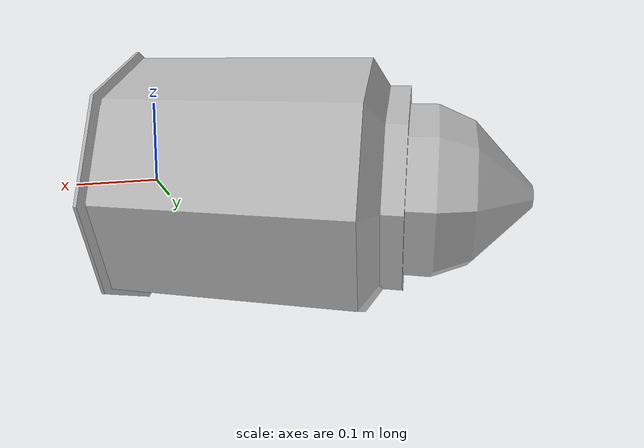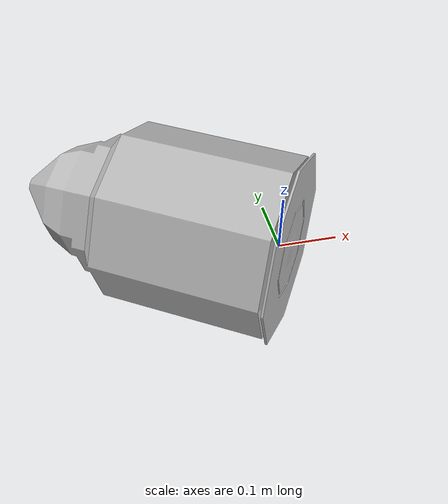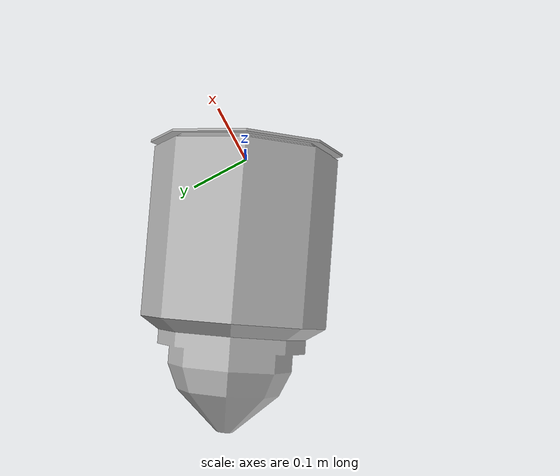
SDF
<?xml version="1.0" ?>
<sdf version="1.4">
  <model name="ied">
 <pose>0 0 0 0 1.57 1</pose>
    <link name="link1">
      <inertial>
        <pose>0 0 0 1.57 0 0</pose>
        <mass>5</mass>
        <inertia>
          <ixx>1</ixx>
          <ixy>0.5</ixy><iyy>1</iyy>
          <ixz>0.5</ixz><iyz>0.5</iyz><izz>1</izz>
        </inertia>
      </inertial>

      <visual name="visual">
        <geometry>
        <mesh>
                        <uri>model://ied/meshes/bullet.dae</uri>
		<scale>0.8 0.2 0.8</scale>
                </mesh>

        </geometry>
<material>
                    <script>
                        <uri>model://ied/materials/scripts</uri>
                        <uri>model://ied/materials/textures</uri>
                        <name>ied/ied1</name>
                    </script>
</material>

      </visual>
      <collision name="collision">
        <pose>0 0 0 0 0 0</pose>
 	        <geometry>
        <mesh>
                        <uri>model://ied/meshes/bullet.dae</uri>
<scale>0.8 0.2 0.8</scale>
                </mesh>

        </geometry>
        <surface>
          <contact>
            <ode>
              <max_vel>0.1</max_vel>
              <min_depth>0.001</min_depth>
            </ode>
          </contact>
        </surface>
      </collision>
    </link>
  </model>
</sdf>
